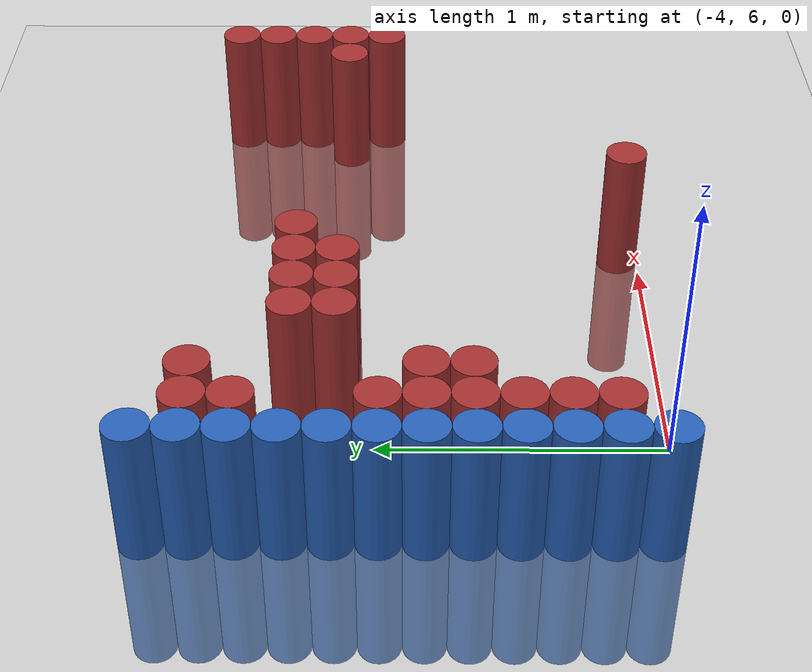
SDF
<sdf version="1.6">
 <world name="default">
  <model name="ground_plane">
   <static>1</static>
   <link name="link">
    <collision name="collision">
     <geometry><plane><normal>0 0 1</normal><size>100 100</size></plane></geometry>
     <surface><friction><ode><mu>100</mu><mu2>50</mu2></ode></friction></surface>
    </collision>
    <visual name="visual">
     <cast_shadows>0</cast_shadows>
     <geometry><plane><normal>0 0 1</normal><size>100 100</size></plane></geometry>
     <material>
      <script><uri>file://media/materials/scripts/gazebo.material</uri><name>Gazebo/Grey</name></script>
     </material>
    </visual>
   </link>
  </model>
  <model name="unit_cylinder_102">
   <static>1</static>
   <pose>-4.425000 6.075000 0.000000 0.000000 0.000000 0.000000</pose>
   <link name="link">
    <inertial>
     <mass>1</mass>
     <inertia><ixx>0.145833</ixx><ixy>0</ixy><ixz>0</ixz><iyy>0.145833</iyy><iyz>0</iyz><izz>0.125</izz></inertia>
    </inertial>
    <collision name="collision">
     <geometry><cylinder><radius>0.075000</radius><length>1</length></cylinder></geometry>
    </collision>
    <visual name="visual">
     <geometry><cylinder><radius>0.075000</radius><length>1</length></cylinder></geometry>
     <material>
      <ambient>0.152000 0.379000 0.720000 1</ambient>
      <diffuse>0.152000 0.379000 0.720000 1</diffuse>
     </material>
     <material>
      <script><name>Gazebo/Grey</name><uri>file://media/materials/scripts/gazebo.material</uri></script>
     </material>
    </visual>
    <sensor name="sensor_contact" type="contact"><contact><collision>collision</collision></contact></sensor>
   </link>
   <plugin filename="gz-sim-touchplugin-system" name="gz::sim::systems::TouchPlugin">
    <target>robot</target>
    <namespace>robot</namespace>
    <time>0.001</time>
    <enabled>true</enabled>
   </plugin>
  </model>
  <model name="unit_cylinder_103">
   <static>1</static>
   <pose>-4.425000 6.225000 0.000000 0.000000 0.000000 0.000000</pose>
   <link name="link">
    <inertial>
     <mass>1</mass>
     <inertia><ixx>0.145833</ixx><ixy>0</ixy><ixz>0</ixz><iyy>0.145833</iyy><iyz>0</iyz><izz>0.125</izz></inertia>
    </inertial>
    <collision name="collision">
     <geometry><cylinder><radius>0.075000</radius><length>1</length></cylinder></geometry>
    </collision>
    <visual name="visual">
     <geometry><cylinder><radius>0.075000</radius><length>1</length></cylinder></geometry>
     <material>
      <ambient>0.152000 0.379000 0.720000 1</ambient>
      <diffuse>0.152000 0.379000 0.720000 1</diffuse>
     </material>
     <material>
      <script><name>Gazebo/Grey</name><uri>file://media/materials/scripts/gazebo.material</uri></script>
     </material>
    </visual>
    <sensor name="sensor_contact" type="contact"><contact><collision>collision</collision></contact></sensor>
   </link>
   <plugin filename="gz-sim-touchplugin-system" name="gz::sim::systems::TouchPlugin">
    <target>robot</target>
    <namespace>robot</namespace>
    <time>0.001</time>
    <enabled>true</enabled>
   </plugin>
  </model>
  <model name="unit_cylinder_104">
   <static>1</static>
   <pose>-4.425000 6.375000 0.000000 0.000000 0.000000 0.000000</pose>
   <link name="link">
    <inertial>
     <mass>1</mass>
     <inertia><ixx>0.145833</ixx><ixy>0</ixy><ixz>0</ixz><iyy>0.145833</iyy><iyz>0</iyz><izz>0.125</izz></inertia>
    </inertial>
    <collision name="collision">
     <geometry><cylinder><radius>0.075000</radius><length>1</length></cylinder></geometry>
    </collision>
    <visual name="visual">
     <geometry><cylinder><radius>0.075000</radius><length>1</length></cylinder></geometry>
     <material>
      <ambient>0.152000 0.379000 0.720000 1</ambient>
      <diffuse>0.152000 0.379000 0.720000 1</diffuse>
     </material>
     <material>
      <script><name>Gazebo/Grey</name><uri>file://media/materials/scripts/gazebo.material</uri></script>
     </material>
    </visual>
    <sensor name="sensor_contact" type="contact"><contact><collision>collision</collision></contact></sensor>
   </link>
   <plugin filename="gz-sim-touchplugin-system" name="gz::sim::systems::TouchPlugin">
    <target>robot</target>
    <namespace>robot</namespace>
    <time>0.001</time>
    <enabled>true</enabled>
   </plugin>
  </model>
  <model name="unit_cylinder_105">
   <static>1</static>
   <pose>-4.425000 6.525000 0.000000 0.000000 0.000000 0.000000</pose>
   <link name="link">
    <inertial>
     <mass>1</mass>
     <inertia><ixx>0.145833</ixx><ixy>0</ixy><ixz>0</ixz><iyy>0.145833</iyy><iyz>0</iyz><izz>0.125</izz></inertia>
    </inertial>
    <collision name="collision">
     <geometry><cylinder><radius>0.075000</radius><length>1</length></cylinder></geometry>
    </collision>
    <visual name="visual">
     <geometry><cylinder><radius>0.075000</radius><length>1</length></cylinder></geometry>
     <material>
      <ambient>0.152000 0.379000 0.720000 1</ambient>
      <diffuse>0.152000 0.379000 0.720000 1</diffuse>
     </material>
     <material>
      <script><name>Gazebo/Grey</name><uri>file://media/materials/scripts/gazebo.material</uri></script>
     </material>
    </visual>
    <sensor name="sensor_contact" type="contact"><contact><collision>collision</collision></contact></sensor>
   </link>
   <plugin filename="gz-sim-touchplugin-system" name="gz::sim::systems::TouchPlugin">
    <target>robot</target>
    <namespace>robot</namespace>
    <time>0.001</time>
    <enabled>true</enabled>
   </plugin>
  </model>
  <model name="unit_cylinder_106">
   <static>1</static>
   <pose>-4.425000 6.675000 0.000000 0.000000 0.000000 0.000000</pose>
   <link name="link">
    <inertial>
     <mass>1</mass>
     <inertia><ixx>0.145833</ixx><ixy>0</ixy><ixz>0</ixz><iyy>0.145833</iyy><iyz>0</iyz><izz>0.125</izz></inertia>
    </inertial>
    <collision name="collision">
     <geometry><cylinder><radius>0.075000</radius><length>1</length></cylinder></geometry>
    </collision>
    <visual name="visual">
     <geometry><cylinder><radius>0.075000</radius><length>1</length></cylinder></geometry>
     <material>
      <ambient>0.152000 0.379000 0.720000 1</ambient>
      <diffuse>0.152000 0.379000 0.720000 1</diffuse>
     </material>
     <material>
      <script><name>Gazebo/Grey</name><uri>file://media/materials/scripts/gazebo.material</uri></script>
     </material>
    </visual>
    <sensor name="sensor_contact" type="contact"><contact><collision>collision</collision></contact></sensor>
   </link>
   <plugin filename="gz-sim-touchplugin-system" name="gz::sim::systems::TouchPlugin">
    <target>robot</target>
    <namespace>robot</namespace>
    <time>0.001</time>
    <enabled>true</enabled>
   </plugin>
  </model>
  <model name="unit_cylinder_107">
   <static>1</static>
   <pose>-4.425000 6.825000 0.000000 0.000000 0.000000 0.000000</pose>
   <link name="link">
    <inertial>
     <mass>1</mass>
     <inertia><ixx>0.145833</ixx><ixy>0</ixy><ixz>0</ixz><iyy>0.145833</iyy><iyz>0</iyz><izz>0.125</izz></inertia>
    </inertial>
    <collision name="collision">
     <geometry><cylinder><radius>0.075000</radius><length>1</length></cylinder></geometry>
    </collision>
    <visual name="visual">
     <geometry><cylinder><radius>0.075000</radius><length>1</length></cylinder></geometry>
     <material>
      <ambient>0.152000 0.379000 0.720000 1</ambient>
      <diffuse>0.152000 0.379000 0.720000 1</diffuse>
     </material>
     <material>
      <script><name>Gazebo/Grey</name><uri>file://media/materials/scripts/gazebo.material</uri></script>
     </material>
    </visual>
    <sensor name="sensor_contact" type="contact"><contact><collision>collision</collision></contact></sensor>
   </link>
   <plugin filename="gz-sim-touchplugin-system" name="gz::sim::systems::TouchPlugin">
    <target>robot</target>
    <namespace>robot</namespace>
    <time>0.001</time>
    <enabled>true</enabled>
   </plugin>
  </model>
  <model name="unit_cylinder_108">
   <static>1</static>
   <pose>-4.425000 6.975000 0.000000 0.000000 0.000000 0.000000</pose>
   <link name="link">
    <inertial>
     <mass>1</mass>
     <inertia><ixx>0.145833</ixx><ixy>0</ixy><ixz>0</ixz><iyy>0.145833</iyy><iyz>0</iyz><izz>0.125</izz></inertia>
    </inertial>
    <collision name="collision">
     <geometry><cylinder><radius>0.075000</radius><length>1</length></cylinder></geometry>
    </collision>
    <visual name="visual">
     <geometry><cylinder><radius>0.075000</radius><length>1</length></cylinder></geometry>
     <material>
      <ambient>0.152000 0.379000 0.720000 1</ambient>
      <diffuse>0.152000 0.379000 0.720000 1</diffuse>
     </material>
     <material>
      <script><name>Gazebo/Grey</name><uri>file://media/materials/scripts/gazebo.material</uri></script>
     </material>
    </visual>
    <sensor name="sensor_contact" type="contact"><contact><collision>collision</collision></contact></sensor>
   </link>
   <plugin filename="gz-sim-touchplugin-system" name="gz::sim::systems::TouchPlugin">
    <target>robot</target>
    <namespace>robot</namespace>
    <time>0.001</time>
    <enabled>true</enabled>
   </plugin>
  </model>
  <model name="unit_cylinder_109">
   <static>1</static>
   <pose>-4.425000 7.125000 0.000000 0.000000 0.000000 0.000000</pose>
   <link name="link">
    <inertial>
     <mass>1</mass>
     <inertia><ixx>0.145833</ixx><ixy>0</ixy><ixz>0</ixz><iyy>0.145833</iyy><iyz>0</iyz><izz>0.125</izz></inertia>
    </inertial>
    <collision name="collision">
     <geometry><cylinder><radius>0.075000</radius><length>1</length></cylinder></geometry>
    </collision>
    <visual name="visual">
     <geometry><cylinder><radius>0.075000</radius><length>1</length></cylinder></geometry>
     <material>
      <ambient>0.152000 0.379000 0.720000 1</ambient>
      <diffuse>0.152000 0.379000 0.720000 1</diffuse>
     </material>
     <material>
      <script><name>Gazebo/Grey</name><uri>file://media/materials/scripts/gazebo.material</uri></script>
     </material>
    </visual>
    <sensor name="sensor_contact" type="contact"><contact><collision>collision</collision></contact></sensor>
   </link>
   <plugin filename="gz-sim-touchplugin-system" name="gz::sim::systems::TouchPlugin">
    <target>robot</target>
    <namespace>robot</namespace>
    <time>0.001</time>
    <enabled>true</enabled>
   </plugin>
  </model>
  <model name="unit_cylinder_110">
   <static>1</static>
   <pose>-4.425000 7.275000 0.000000 0.000000 0.000000 0.000000</pose>
   <link name="link">
    <inertial>
     <mass>1</mass>
     <inertia><ixx>0.145833</ixx><ixy>0</ixy><ixz>0</ixz><iyy>0.145833</iyy><iyz>0</iyz><izz>0.125</izz></inertia>
    </inertial>
    <collision name="collision">
     <geometry><cylinder><radius>0.075000</radius><length>1</length></cylinder></geometry>
    </collision>
    <visual name="visual">
     <geometry><cylinder><radius>0.075000</radius><length>1</length></cylinder></geometry>
     <material>
      <ambient>0.152000 0.379000 0.720000 1</ambient>
      <diffuse>0.152000 0.379000 0.720000 1</diffuse>
     </material>
     <material>
      <script><name>Gazebo/Grey</name><uri>file://media/materials/scripts/gazebo.material</uri></script>
     </material>
    </visual>
    <sensor name="sensor_contact" type="contact"><contact><collision>collision</collision></contact></sensor>
   </link>
   <plugin filename="gz-sim-touchplugin-system" name="gz::sim::systems::TouchPlugin">
    <target>robot</target>
    <namespace>robot</namespace>
    <time>0.001</time>
    <enabled>true</enabled>
   </plugin>
  </model>
  <model name="unit_cylinder_111">
   <static>1</static>
   <pose>-4.425000 7.425000 0.000000 0.000000 0.000000 0.000000</pose>
   <link name="link">
    <inertial>
     <mass>1</mass>
     <inertia><ixx>0.145833</ixx><ixy>0</ixy><ixz>0</ixz><iyy>0.145833</iyy><iyz>0</iyz><izz>0.125</izz></inertia>
    </inertial>
    <collision name="collision">
     <geometry><cylinder><radius>0.075000</radius><length>1</length></cylinder></geometry>
    </collision>
    <visual name="visual">
     <geometry><cylinder><radius>0.075000</radius><length>1</length></cylinder></geometry>
     <material>
      <ambient>0.152000 0.379000 0.720000 1</ambient>
      <diffuse>0.152000 0.379000 0.720000 1</diffuse>
     </material>
     <material>
      <script><name>Gazebo/Grey</name><uri>file://media/materials/scripts/gazebo.material</uri></script>
     </material>
    </visual>
    <sensor name="sensor_contact" type="contact"><contact><collision>collision</collision></contact></sensor>
   </link>
   <plugin filename="gz-sim-touchplugin-system" name="gz::sim::systems::TouchPlugin">
    <target>robot</target>
    <namespace>robot</namespace>
    <time>0.001</time>
    <enabled>true</enabled>
   </plugin>
  </model>
  <model name="unit_cylinder_112">
   <static>1</static>
   <pose>-4.425000 7.575000 0.000000 0.000000 0.000000 0.000000</pose>
   <link name="link">
    <inertial>
     <mass>1</mass>
     <inertia><ixx>0.145833</ixx><ixy>0</ixy><ixz>0</ixz><iyy>0.145833</iyy><iyz>0</iyz><izz>0.125</izz></inertia>
    </inertial>
    <collision name="collision">
     <geometry><cylinder><radius>0.075000</radius><length>1</length></cylinder></geometry>
    </collision>
    <visual name="visual">
     <geometry><cylinder><radius>0.075000</radius><length>1</length></cylinder></geometry>
     <material>
      <ambient>0.152000 0.379000 0.720000 1</ambient>
      <diffuse>0.152000 0.379000 0.720000 1</diffuse>
     </material>
     <material>
      <script><name>Gazebo/Grey</name><uri>file://media/materials/scripts/gazebo.material</uri></script>
     </material>
    </visual>
    <sensor name="sensor_contact" type="contact"><contact><collision>collision</collision></contact></sensor>
   </link>
   <plugin filename="gz-sim-touchplugin-system" name="gz::sim::systems::TouchPlugin">
    <target>robot</target>
    <namespace>robot</namespace>
    <time>0.001</time>
    <enabled>true</enabled>
   </plugin>
  </model>
  <model name="unit_cylinder_113">
   <static>1</static>
   <pose>-4.425000 7.725000 0.000000 0.000000 0.000000 0.000000</pose>
   <link name="link">
    <inertial>
     <mass>1</mass>
     <inertia><ixx>0.145833</ixx><ixy>0</ixy><ixz>0</ixz><iyy>0.145833</iyy><iyz>0</iyz><izz>0.125</izz></inertia>
    </inertial>
    <collision name="collision">
     <geometry><cylinder><radius>0.075000</radius><length>1</length></cylinder></geometry>
    </collision>
    <visual name="visual">
     <geometry><cylinder><radius>0.075000</radius><length>1</length></cylinder></geometry>
     <material>
      <ambient>0.152000 0.379000 0.720000 1</ambient>
      <diffuse>0.152000 0.379000 0.720000 1</diffuse>
     </material>
     <material>
      <script><name>Gazebo/Grey</name><uri>file://media/materials/scripts/gazebo.material</uri></script>
     </material>
    </visual>
    <sensor name="sensor_contact" type="contact"><contact><collision>collision</collision></contact></sensor>
   </link>
   <plugin filename="gz-sim-touchplugin-system" name="gz::sim::systems::TouchPlugin">
    <target>robot</target>
    <namespace>robot</namespace>
    <time>0.001</time>
    <enabled>true</enabled>
   </plugin>
  </model>
  <model name="unit_cylinder_130">
   <static>1</static>
   <pose>-4.275000 6.225000 0.000000 0.000000 0.000000 0.000000</pose>
   <link name="link">
    <inertial>
     <mass>1</mass>
     <inertia><ixx>0.145833</ixx><ixy>0</ixy><ixz>0</ixz><iyy>0.145833</iyy><iyz>0</iyz><izz>0.125</izz></inertia>
    </inertial>
    <collision name="collision">
     <geometry><cylinder><radius>0.075000</radius><length>1</length></cylinder></geometry>
    </collision>
    <visual name="visual">
     <geometry><cylinder><radius>0.075000</radius><length>1</length></cylinder></geometry>
     <material>
      <ambient>0.648000 0.192000 0.192000 1</ambient>
      <diffuse>0.648000 0.192000 0.192000 1</diffuse>
     </material>
     <material>
      <script><name>Gazebo/Grey</name><uri>file://media/materials/scripts/gazebo.material</uri></script>
     </material>
    </visual>
    <sensor name="sensor_contact" type="contact"><contact><collision>collision</collision></contact></sensor>
   </link>
   <plugin filename="gz-sim-touchplugin-system" name="gz::sim::systems::TouchPlugin">
    <target>robot</target>
    <namespace>robot</namespace>
    <time>0.001</time>
    <enabled>true</enabled>
   </plugin>
  </model>
  <model name="unit_cylinder_131">
   <static>1</static>
   <pose>-4.275000 6.375000 0.000000 0.000000 0.000000 0.000000</pose>
   <link name="link">
    <inertial>
     <mass>1</mass>
     <inertia><ixx>0.145833</ixx><ixy>0</ixy><ixz>0</ixz><iyy>0.145833</iyy><iyz>0</iyz><izz>0.125</izz></inertia>
    </inertial>
    <collision name="collision">
     <geometry><cylinder><radius>0.075000</radius><length>1</length></cylinder></geometry>
    </collision>
    <visual name="visual">
     <geometry><cylinder><radius>0.075000</radius><length>1</length></cylinder></geometry>
     <material>
      <ambient>0.648000 0.192000 0.192000 1</ambient>
      <diffuse>0.648000 0.192000 0.192000 1</diffuse>
     </material>
     <material>
      <script><name>Gazebo/Grey</name><uri>file://media/materials/scripts/gazebo.material</uri></script>
     </material>
    </visual>
    <sensor name="sensor_contact" type="contact"><contact><collision>collision</collision></contact></sensor>
   </link>
   <plugin filename="gz-sim-touchplugin-system" name="gz::sim::systems::TouchPlugin">
    <target>robot</target>
    <namespace>robot</namespace>
    <time>0.001</time>
    <enabled>true</enabled>
   </plugin>
  </model>
  <model name="unit_cylinder_132">
   <static>1</static>
   <pose>-4.275000 6.525000 0.000000 0.000000 0.000000 0.000000</pose>
   <link name="link">
    <inertial>
     <mass>1</mass>
     <inertia><ixx>0.145833</ixx><ixy>0</ixy><ixz>0</ixz><iyy>0.145833</iyy><iyz>0</iyz><izz>0.125</izz></inertia>
    </inertial>
    <collision name="collision">
     <geometry><cylinder><radius>0.075000</radius><length>1</length></cylinder></geometry>
    </collision>
    <visual name="visual">
     <geometry><cylinder><radius>0.075000</radius><length>1</length></cylinder></geometry>
     <material>
      <ambient>0.648000 0.192000 0.192000 1</ambient>
      <diffuse>0.648000 0.192000 0.192000 1</diffuse>
     </material>
     <material>
      <script><name>Gazebo/Grey</name><uri>file://media/materials/scripts/gazebo.material</uri></script>
     </material>
    </visual>
    <sensor name="sensor_contact" type="contact"><contact><collision>collision</collision></contact></sensor>
   </link>
   <plugin filename="gz-sim-touchplugin-system" name="gz::sim::systems::TouchPlugin">
    <target>robot</target>
    <namespace>robot</namespace>
    <time>0.001</time>
    <enabled>true</enabled>
   </plugin>
  </model>
  <model name="unit_cylinder_133">
   <static>1</static>
   <pose>-4.275000 6.675000 0.000000 0.000000 0.000000 0.000000</pose>
   <link name="link">
    <inertial>
     <mass>1</mass>
     <inertia><ixx>0.145833</ixx><ixy>0</ixy><ixz>0</ixz><iyy>0.145833</iyy><iyz>0</iyz><izz>0.125</izz></inertia>
    </inertial>
    <collision name="collision">
     <geometry><cylinder><radius>0.075000</radius><length>1</length></cylinder></geometry>
    </collision>
    <visual name="visual">
     <geometry><cylinder><radius>0.075000</radius><length>1</length></cylinder></geometry>
     <material>
      <ambient>0.648000 0.192000 0.192000 1</ambient>
      <diffuse>0.648000 0.192000 0.192000 1</diffuse>
     </material>
     <material>
      <script><name>Gazebo/Grey</name><uri>file://media/materials/scripts/gazebo.material</uri></script>
     </material>
    </visual>
    <sensor name="sensor_contact" type="contact"><contact><collision>collision</collision></contact></sensor>
   </link>
   <plugin filename="gz-sim-touchplugin-system" name="gz::sim::systems::TouchPlugin">
    <target>robot</target>
    <namespace>robot</namespace>
    <time>0.001</time>
    <enabled>true</enabled>
   </plugin>
  </model>
  <model name="unit_cylinder_134">
   <static>1</static>
   <pose>-4.275000 6.825000 0.000000 0.000000 0.000000 0.000000</pose>
   <link name="link">
    <inertial>
     <mass>1</mass>
     <inertia><ixx>0.145833</ixx><ixy>0</ixy><ixz>0</ixz><iyy>0.145833</iyy><iyz>0</iyz><izz>0.125</izz></inertia>
    </inertial>
    <collision name="collision">
     <geometry><cylinder><radius>0.075000</radius><length>1</length></cylinder></geometry>
    </collision>
    <visual name="visual">
     <geometry><cylinder><radius>0.075000</radius><length>1</length></cylinder></geometry>
     <material>
      <ambient>0.648000 0.192000 0.192000 1</ambient>
      <diffuse>0.648000 0.192000 0.192000 1</diffuse>
     </material>
     <material>
      <script><name>Gazebo/Grey</name><uri>file://media/materials/scripts/gazebo.material</uri></script>
     </material>
    </visual>
    <sensor name="sensor_contact" type="contact"><contact><collision>collision</collision></contact></sensor>
   </link>
   <plugin filename="gz-sim-touchplugin-system" name="gz::sim::systems::TouchPlugin">
    <target>robot</target>
    <namespace>robot</namespace>
    <time>0.001</time>
    <enabled>true</enabled>
   </plugin>
  </model>
  <model name="unit_cylinder_135">
   <static>1</static>
   <pose>-4.275000 6.975000 0.000000 0.000000 0.000000 0.000000</pose>
   <link name="link">
    <inertial>
     <mass>1</mass>
     <inertia><ixx>0.145833</ixx><ixy>0</ixy><ixz>0</ixz><iyy>0.145833</iyy><iyz>0</iyz><izz>0.125</izz></inertia>
    </inertial>
    <collision name="collision">
     <geometry><cylinder><radius>0.075000</radius><length>1</length></cylinder></geometry>
    </collision>
    <visual name="visual">
     <geometry><cylinder><radius>0.075000</radius><length>1</length></cylinder></geometry>
     <material>
      <ambient>0.648000 0.192000 0.192000 1</ambient>
      <diffuse>0.648000 0.192000 0.192000 1</diffuse>
     </material>
     <material>
      <script><name>Gazebo/Grey</name><uri>file://media/materials/scripts/gazebo.material</uri></script>
     </material>
    </visual>
    <sensor name="sensor_contact" type="contact"><contact><collision>collision</collision></contact></sensor>
   </link>
   <plugin filename="gz-sim-touchplugin-system" name="gz::sim::systems::TouchPlugin">
    <target>robot</target>
    <namespace>robot</namespace>
    <time>0.001</time>
    <enabled>true</enabled>
   </plugin>
  </model>
  <model name="unit_cylinder_136">
   <static>1</static>
   <pose>-4.275000 7.425000 0.000000 0.000000 0.000000 0.000000</pose>
   <link name="link">
    <inertial>
     <mass>1</mass>
     <inertia><ixx>0.145833</ixx><ixy>0</ixy><ixz>0</ixz><iyy>0.145833</iyy><iyz>0</iyz><izz>0.125</izz></inertia>
    </inertial>
    <collision name="collision">
     <geometry><cylinder><radius>0.075000</radius><length>1</length></cylinder></geometry>
    </collision>
    <visual name="visual">
     <geometry><cylinder><radius>0.075000</radius><length>1</length></cylinder></geometry>
     <material>
      <ambient>0.648000 0.192000 0.192000 1</ambient>
      <diffuse>0.648000 0.192000 0.192000 1</diffuse>
     </material>
     <material>
      <script><name>Gazebo/Grey</name><uri>file://media/materials/scripts/gazebo.material</uri></script>
     </material>
    </visual>
    <sensor name="sensor_contact" type="contact"><contact><collision>collision</collision></contact></sensor>
   </link>
   <plugin filename="gz-sim-touchplugin-system" name="gz::sim::systems::TouchPlugin">
    <target>robot</target>
    <namespace>robot</namespace>
    <time>0.001</time>
    <enabled>true</enabled>
   </plugin>
  </model>
  <model name="unit_cylinder_137">
   <static>1</static>
   <pose>-4.275000 7.575000 0.000000 0.000000 0.000000 0.000000</pose>
   <link name="link">
    <inertial>
     <mass>1</mass>
     <inertia><ixx>0.145833</ixx><ixy>0</ixy><ixz>0</ixz><iyy>0.145833</iyy><iyz>0</iyz><izz>0.125</izz></inertia>
    </inertial>
    <collision name="collision">
     <geometry><cylinder><radius>0.075000</radius><length>1</length></cylinder></geometry>
    </collision>
    <visual name="visual">
     <geometry><cylinder><radius>0.075000</radius><length>1</length></cylinder></geometry>
     <material>
      <ambient>0.648000 0.192000 0.192000 1</ambient>
      <diffuse>0.648000 0.192000 0.192000 1</diffuse>
     </material>
     <material>
      <script><name>Gazebo/Grey</name><uri>file://media/materials/scripts/gazebo.material</uri></script>
     </material>
    </visual>
    <sensor name="sensor_contact" type="contact"><contact><collision>collision</collision></contact></sensor>
   </link>
   <plugin filename="gz-sim-touchplugin-system" name="gz::sim::systems::TouchPlugin">
    <target>robot</target>
    <namespace>robot</namespace>
    <time>0.001</time>
    <enabled>true</enabled>
   </plugin>
  </model>
  <model name="unit_cylinder_142">
   <static>1</static>
   <pose>-4.125000 6.675000 0.000000 0.000000 0.000000 0.000000</pose>
   <link name="link">
    <inertial>
     <mass>1</mass>
     <inertia><ixx>0.145833</ixx><ixy>0</ixy><ixz>0</ixz><iyy>0.145833</iyy><iyz>0</iyz><izz>0.125</izz></inertia>
    </inertial>
    <collision name="collision">
     <geometry><cylinder><radius>0.075000</radius><length>1</length></cylinder></geometry>
    </collision>
    <visual name="visual">
     <geometry><cylinder><radius>0.075000</radius><length>1</length></cylinder></geometry>
     <material>
      <ambient>0.648000 0.192000 0.192000 1</ambient>
      <diffuse>0.648000 0.192000 0.192000 1</diffuse>
     </material>
     <material>
      <script><name>Gazebo/Grey</name><uri>file://media/materials/scripts/gazebo.material</uri></script>
     </material>
    </visual>
    <sensor name="sensor_contact" type="contact"><contact><collision>collision</collision></contact></sensor>
   </link>
   <plugin filename="gz-sim-touchplugin-system" name="gz::sim::systems::TouchPlugin">
    <target>robot</target>
    <namespace>robot</namespace>
    <time>0.001</time>
    <enabled>true</enabled>
   </plugin>
  </model>
  <model name="unit_cylinder_143">
   <static>1</static>
   <pose>-4.125000 6.825000 0.000000 0.000000 0.000000 0.000000</pose>
   <link name="link">
    <inertial>
     <mass>1</mass>
     <inertia><ixx>0.145833</ixx><ixy>0</ixy><ixz>0</ixz><iyy>0.145833</iyy><iyz>0</iyz><izz>0.125</izz></inertia>
    </inertial>
    <collision name="collision">
     <geometry><cylinder><radius>0.075000</radius><length>1</length></cylinder></geometry>
    </collision>
    <visual name="visual">
     <geometry><cylinder><radius>0.075000</radius><length>1</length></cylinder></geometry>
     <material>
      <ambient>0.648000 0.192000 0.192000 1</ambient>
      <diffuse>0.648000 0.192000 0.192000 1</diffuse>
     </material>
     <material>
      <script><name>Gazebo/Grey</name><uri>file://media/materials/scripts/gazebo.material</uri></script>
     </material>
    </visual>
    <sensor name="sensor_contact" type="contact"><contact><collision>collision</collision></contact></sensor>
   </link>
   <plugin filename="gz-sim-touchplugin-system" name="gz::sim::systems::TouchPlugin">
    <target>robot</target>
    <namespace>robot</namespace>
    <time>0.001</time>
    <enabled>true</enabled>
   </plugin>
  </model>
  <model name="unit_cylinder_144">
   <static>1</static>
   <pose>-4.125000 7.575000 0.000000 0.000000 0.000000 0.000000</pose>
   <link name="link">
    <inertial>
     <mass>1</mass>
     <inertia><ixx>0.145833</ixx><ixy>0</ixy><ixz>0</ixz><iyy>0.145833</iyy><iyz>0</iyz><izz>0.125</izz></inertia>
    </inertial>
    <collision name="collision">
     <geometry><cylinder><radius>0.075000</radius><length>1</length></cylinder></geometry>
    </collision>
    <visual name="visual">
     <geometry><cylinder><radius>0.075000</radius><length>1</length></cylinder></geometry>
     <material>
      <ambient>0.648000 0.192000 0.192000 1</ambient>
      <diffuse>0.648000 0.192000 0.192000 1</diffuse>
     </material>
     <material>
      <script><name>Gazebo/Grey</name><uri>file://media/materials/scripts/gazebo.material</uri></script>
     </material>
    </visual>
    <sensor name="sensor_contact" type="contact"><contact><collision>collision</collision></contact></sensor>
   </link>
   <plugin filename="gz-sim-touchplugin-system" name="gz::sim::systems::TouchPlugin">
    <target>robot</target>
    <namespace>robot</namespace>
    <time>0.001</time>
    <enabled>true</enabled>
   </plugin>
  </model>
  <model name="unit_cylinder_152">
   <static>1</static>
   <pose>-3.825000 7.125000 0.000000 0.000000 0.000000 0.000000</pose>
   <link name="link">
    <inertial>
     <mass>1</mass>
     <inertia><ixx>0.145833</ixx><ixy>0</ixy><ixz>0</ixz><iyy>0.145833</iyy><iyz>0</iyz><izz>0.125</izz></inertia>
    </inertial>
    <collision name="collision">
     <geometry><cylinder><radius>0.075000</radius><length>1</length></cylinder></geometry>
    </collision>
    <visual name="visual">
     <geometry><cylinder><radius>0.075000</radius><length>1</length></cylinder></geometry>
     <material>
      <ambient>0.648000 0.192000 0.192000 1</ambient>
      <diffuse>0.648000 0.192000 0.192000 1</diffuse>
     </material>
     <material>
      <script><name>Gazebo/Grey</name><uri>file://media/materials/scripts/gazebo.material</uri></script>
     </material>
    </visual>
    <sensor name="sensor_contact" type="contact"><contact><collision>collision</collision></contact></sensor>
   </link>
   <plugin filename="gz-sim-touchplugin-system" name="gz::sim::systems::TouchPlugin">
    <target>robot</target>
    <namespace>robot</namespace>
    <time>0.001</time>
    <enabled>true</enabled>
   </plugin>
  </model>
  <model name="unit_cylinder_153">
   <static>1</static>
   <pose>-3.825000 7.275000 0.000000 0.000000 0.000000 0.000000</pose>
   <link name="link">
    <inertial>
     <mass>1</mass>
     <inertia><ixx>0.145833</ixx><ixy>0</ixy><ixz>0</ixz><iyy>0.145833</iyy><iyz>0</iyz><izz>0.125</izz></inertia>
    </inertial>
    <collision name="collision">
     <geometry><cylinder><radius>0.075000</radius><length>1</length></cylinder></geometry>
    </collision>
    <visual name="visual">
     <geometry><cylinder><radius>0.075000</radius><length>1</length></cylinder></geometry>
     <material>
      <ambient>0.648000 0.192000 0.192000 1</ambient>
      <diffuse>0.648000 0.192000 0.192000 1</diffuse>
     </material>
     <material>
      <script><name>Gazebo/Grey</name><uri>file://media/materials/scripts/gazebo.material</uri></script>
     </material>
    </visual>
    <sensor name="sensor_contact" type="contact"><contact><collision>collision</collision></contact></sensor>
   </link>
   <plugin filename="gz-sim-touchplugin-system" name="gz::sim::systems::TouchPlugin">
    <target>robot</target>
    <namespace>robot</namespace>
    <time>0.001</time>
    <enabled>true</enabled>
   </plugin>
  </model>
  <model name="unit_cylinder_157">
   <static>1</static>
   <pose>-3.675000 7.125000 0.000000 0.000000 0.000000 0.000000</pose>
   <link name="link">
    <inertial>
     <mass>1</mass>
     <inertia><ixx>0.145833</ixx><ixy>0</ixy><ixz>0</ixz><iyy>0.145833</iyy><iyz>0</iyz><izz>0.125</izz></inertia>
    </inertial>
    <collision name="collision">
     <geometry><cylinder><radius>0.075000</radius><length>1</length></cylinder></geometry>
    </collision>
    <visual name="visual">
     <geometry><cylinder><radius>0.075000</radius><length>1</length></cylinder></geometry>
     <material>
      <ambient>0.648000 0.192000 0.192000 1</ambient>
      <diffuse>0.648000 0.192000 0.192000 1</diffuse>
     </material>
     <material>
      <script><name>Gazebo/Grey</name><uri>file://media/materials/scripts/gazebo.material</uri></script>
     </material>
    </visual>
    <sensor name="sensor_contact" type="contact"><contact><collision>collision</collision></contact></sensor>
   </link>
   <plugin filename="gz-sim-touchplugin-system" name="gz::sim::systems::TouchPlugin">
    <target>robot</target>
    <namespace>robot</namespace>
    <time>0.001</time>
    <enabled>true</enabled>
   </plugin>
  </model>
  <model name="unit_cylinder_158">
   <static>1</static>
   <pose>-3.675000 7.275000 0.000000 0.000000 0.000000 0.000000</pose>
   <link name="link">
    <inertial>
     <mass>1</mass>
     <inertia><ixx>0.145833</ixx><ixy>0</ixy><ixz>0</ixz><iyy>0.145833</iyy><iyz>0</iyz><izz>0.125</izz></inertia>
    </inertial>
    <collision name="collision">
     <geometry><cylinder><radius>0.075000</radius><length>1</length></cylinder></geometry>
    </collision>
    <visual name="visual">
     <geometry><cylinder><radius>0.075000</radius><length>1</length></cylinder></geometry>
     <material>
      <ambient>0.648000 0.192000 0.192000 1</ambient>
      <diffuse>0.648000 0.192000 0.192000 1</diffuse>
     </material>
     <material>
      <script><name>Gazebo/Grey</name><uri>file://media/materials/scripts/gazebo.material</uri></script>
     </material>
    </visual>
    <sensor name="sensor_contact" type="contact"><contact><collision>collision</collision></contact></sensor>
   </link>
   <plugin filename="gz-sim-touchplugin-system" name="gz::sim::systems::TouchPlugin">
    <target>robot</target>
    <namespace>robot</namespace>
    <time>0.001</time>
    <enabled>true</enabled>
   </plugin>
  </model>
  <model name="unit_cylinder_161">
   <static>1</static>
   <pose>-3.525000 7.125000 0.000000 0.000000 0.000000 0.000000</pose>
   <link name="link">
    <inertial>
     <mass>1</mass>
     <inertia><ixx>0.145833</ixx><ixy>0</ixy><ixz>0</ixz><iyy>0.145833</iyy><iyz>0</iyz><izz>0.125</izz></inertia>
    </inertial>
    <collision name="collision">
     <geometry><cylinder><radius>0.075000</radius><length>1</length></cylinder></geometry>
    </collision>
    <visual name="visual">
     <geometry><cylinder><radius>0.075000</radius><length>1</length></cylinder></geometry>
     <material>
      <ambient>0.648000 0.192000 0.192000 1</ambient>
      <diffuse>0.648000 0.192000 0.192000 1</diffuse>
     </material>
     <material>
      <script><name>Gazebo/Grey</name><uri>file://media/materials/scripts/gazebo.material</uri></script>
     </material>
    </visual>
    <sensor name="sensor_contact" type="contact"><contact><collision>collision</collision></contact></sensor>
   </link>
   <plugin filename="gz-sim-touchplugin-system" name="gz::sim::systems::TouchPlugin">
    <target>robot</target>
    <namespace>robot</namespace>
    <time>0.001</time>
    <enabled>true</enabled>
   </plugin>
  </model>
  <model name="unit_cylinder_162">
   <static>1</static>
   <pose>-3.525000 7.275000 0.000000 0.000000 0.000000 0.000000</pose>
   <link name="link">
    <inertial>
     <mass>1</mass>
     <inertia><ixx>0.145833</ixx><ixy>0</ixy><ixz>0</ixz><iyy>0.145833</iyy><iyz>0</iyz><izz>0.125</izz></inertia>
    </inertial>
    <collision name="collision">
     <geometry><cylinder><radius>0.075000</radius><length>1</length></cylinder></geometry>
    </collision>
    <visual name="visual">
     <geometry><cylinder><radius>0.075000</radius><length>1</length></cylinder></geometry>
     <material>
      <ambient>0.648000 0.192000 0.192000 1</ambient>
      <diffuse>0.648000 0.192000 0.192000 1</diffuse>
     </material>
     <material>
      <script><name>Gazebo/Grey</name><uri>file://media/materials/scripts/gazebo.material</uri></script>
     </material>
    </visual>
    <sensor name="sensor_contact" type="contact"><contact><collision>collision</collision></contact></sensor>
   </link>
   <plugin filename="gz-sim-touchplugin-system" name="gz::sim::systems::TouchPlugin">
    <target>robot</target>
    <namespace>robot</namespace>
    <time>0.001</time>
    <enabled>true</enabled>
   </plugin>
  </model>
  <model name="unit_cylinder_164">
   <static>1</static>
   <pose>-3.375000 7.275000 0.000000 0.000000 0.000000 0.000000</pose>
   <link name="link">
    <inertial>
     <mass>1</mass>
     <inertia><ixx>0.145833</ixx><ixy>0</ixy><ixz>0</ixz><iyy>0.145833</iyy><iyz>0</iyz><izz>0.125</izz></inertia>
    </inertial>
    <collision name="collision">
     <geometry><cylinder><radius>0.075000</radius><length>1</length></cylinder></geometry>
    </collision>
    <visual name="visual">
     <geometry><cylinder><radius>0.075000</radius><length>1</length></cylinder></geometry>
     <material>
      <ambient>0.648000 0.192000 0.192000 1</ambient>
      <diffuse>0.648000 0.192000 0.192000 1</diffuse>
     </material>
     <material>
      <script><name>Gazebo/Grey</name><uri>file://media/materials/scripts/gazebo.material</uri></script>
     </material>
    </visual>
    <sensor name="sensor_contact" type="contact"><contact><collision>collision</collision></contact></sensor>
   </link>
   <plugin filename="gz-sim-touchplugin-system" name="gz::sim::systems::TouchPlugin">
    <target>robot</target>
    <namespace>robot</namespace>
    <time>0.001</time>
    <enabled>true</enabled>
   </plugin>
  </model>
  <model name="unit_cylinder_178">
   <static>1</static>
   <pose>-2.925000 6.075000 0.000000 0.000000 0.000000 0.000000</pose>
   <link name="link">
    <inertial>
     <mass>1</mass>
     <inertia><ixx>0.145833</ixx><ixy>0</ixy><ixz>0</ixz><iyy>0.145833</iyy><iyz>0</iyz><izz>0.125</izz></inertia>
    </inertial>
    <collision name="collision">
     <geometry><cylinder><radius>0.075000</radius><length>1</length></cylinder></geometry>
    </collision>
    <visual name="visual">
     <geometry><cylinder><radius>0.075000</radius><length>1</length></cylinder></geometry>
     <material>
      <ambient>0.648000 0.192000 0.192000 1</ambient>
      <diffuse>0.648000 0.192000 0.192000 1</diffuse>
     </material>
     <material>
      <script><name>Gazebo/Grey</name><uri>file://media/materials/scripts/gazebo.material</uri></script>
     </material>
    </visual>
    <sensor name="sensor_contact" type="contact"><contact><collision>collision</collision></contact></sensor>
   </link>
   <plugin filename="gz-sim-touchplugin-system" name="gz::sim::systems::TouchPlugin">
    <target>robot</target>
    <namespace>robot</namespace>
    <time>0.001</time>
    <enabled>true</enabled>
   </plugin>
  </model>
  <model name="unit_cylinder_190">
   <static>1</static>
   <pose>-2.175000 7.125000 0.000000 0.000000 0.000000 0.000000</pose>
   <link name="link">
    <inertial>
     <mass>1</mass>
     <inertia><ixx>0.145833</ixx><ixy>0</ixy><ixz>0</ixz><iyy>0.145833</iyy><iyz>0</iyz><izz>0.125</izz></inertia>
    </inertial>
    <collision name="collision">
     <geometry><cylinder><radius>0.075000</radius><length>1</length></cylinder></geometry>
    </collision>
    <visual name="visual">
     <geometry><cylinder><radius>0.075000</radius><length>1</length></cylinder></geometry>
     <material>
      <ambient>0.648000 0.192000 0.192000 1</ambient>
      <diffuse>0.648000 0.192000 0.192000 1</diffuse>
     </material>
     <material>
      <script><name>Gazebo/Grey</name><uri>file://media/materials/scripts/gazebo.material</uri></script>
     </material>
    </visual>
    <sensor name="sensor_contact" type="contact"><contact><collision>collision</collision></contact></sensor>
   </link>
   <plugin filename="gz-sim-touchplugin-system" name="gz::sim::systems::TouchPlugin">
    <target>robot</target>
    <namespace>robot</namespace>
    <time>0.001</time>
    <enabled>true</enabled>
   </plugin>
  </model>
  <model name="unit_cylinder_192">
   <static>1</static>
   <pose>-2.025000 6.975000 0.000000 0.000000 0.000000 0.000000</pose>
   <link name="link">
    <inertial>
     <mass>1</mass>
     <inertia><ixx>0.145833</ixx><ixy>0</ixy><ixz>0</ixz><iyy>0.145833</iyy><iyz>0</iyz><izz>0.125</izz></inertia>
    </inertial>
    <collision name="collision">
     <geometry><cylinder><radius>0.075000</radius><length>1</length></cylinder></geometry>
    </collision>
    <visual name="visual">
     <geometry><cylinder><radius>0.075000</radius><length>1</length></cylinder></geometry>
     <material>
      <ambient>0.648000 0.192000 0.192000 1</ambient>
      <diffuse>0.648000 0.192000 0.192000 1</diffuse>
     </material>
     <material>
      <script><name>Gazebo/Grey</name><uri>file://media/materials/scripts/gazebo.material</uri></script>
     </material>
    </visual>
    <sensor name="sensor_contact" type="contact"><contact><collision>collision</collision></contact></sensor>
   </link>
   <plugin filename="gz-sim-touchplugin-system" name="gz::sim::systems::TouchPlugin">
    <target>robot</target>
    <namespace>robot</namespace>
    <time>0.001</time>
    <enabled>true</enabled>
   </plugin>
  </model>
  <model name="unit_cylinder_193">
   <static>1</static>
   <pose>-2.025000 7.125000 0.000000 0.000000 0.000000 0.000000</pose>
   <link name="link">
    <inertial>
     <mass>1</mass>
     <inertia><ixx>0.145833</ixx><ixy>0</ixy><ixz>0</ixz><iyy>0.145833</iyy><iyz>0</iyz><izz>0.125</izz></inertia>
    </inertial>
    <collision name="collision">
     <geometry><cylinder><radius>0.075000</radius><length>1</length></cylinder></geometry>
    </collision>
    <visual name="visual">
     <geometry><cylinder><radius>0.075000</radius><length>1</length></cylinder></geometry>
     <material>
      <ambient>0.648000 0.192000 0.192000 1</ambient>
      <diffuse>0.648000 0.192000 0.192000 1</diffuse>
     </material>
     <material>
      <script><name>Gazebo/Grey</name><uri>file://media/materials/scripts/gazebo.material</uri></script>
     </material>
    </visual>
    <sensor name="sensor_contact" type="contact"><contact><collision>collision</collision></contact></sensor>
   </link>
   <plugin filename="gz-sim-touchplugin-system" name="gz::sim::systems::TouchPlugin">
    <target>robot</target>
    <namespace>robot</namespace>
    <time>0.001</time>
    <enabled>true</enabled>
   </plugin>
  </model>
  <model name="unit_cylinder_194">
   <static>1</static>
   <pose>-2.025000 7.275000 0.000000 0.000000 0.000000 0.000000</pose>
   <link name="link">
    <inertial>
     <mass>1</mass>
     <inertia><ixx>0.145833</ixx><ixy>0</ixy><ixz>0</ixz><iyy>0.145833</iyy><iyz>0</iyz><izz>0.125</izz></inertia>
    </inertial>
    <collision name="collision">
     <geometry><cylinder><radius>0.075000</radius><length>1</length></cylinder></geometry>
    </collision>
    <visual name="visual">
     <geometry><cylinder><radius>0.075000</radius><length>1</length></cylinder></geometry>
     <material>
      <ambient>0.648000 0.192000 0.192000 1</ambient>
      <diffuse>0.648000 0.192000 0.192000 1</diffuse>
     </material>
     <material>
      <script><name>Gazebo/Grey</name><uri>file://media/materials/scripts/gazebo.material</uri></script>
     </material>
    </visual>
    <sensor name="sensor_contact" type="contact"><contact><collision>collision</collision></contact></sensor>
   </link>
   <plugin filename="gz-sim-touchplugin-system" name="gz::sim::systems::TouchPlugin">
    <target>robot</target>
    <namespace>robot</namespace>
    <time>0.001</time>
    <enabled>true</enabled>
   </plugin>
  </model>
  <model name="unit_cylinder_195">
   <static>1</static>
   <pose>-2.025000 7.425000 0.000000 0.000000 0.000000 0.000000</pose>
   <link name="link">
    <inertial>
     <mass>1</mass>
     <inertia><ixx>0.145833</ixx><ixy>0</ixy><ixz>0</ixz><iyy>0.145833</iyy><iyz>0</iyz><izz>0.125</izz></inertia>
    </inertial>
    <collision name="collision">
     <geometry><cylinder><radius>0.075000</radius><length>1</length></cylinder></geometry>
    </collision>
    <visual name="visual">
     <geometry><cylinder><radius>0.075000</radius><length>1</length></cylinder></geometry>
     <material>
      <ambient>0.648000 0.192000 0.192000 1</ambient>
      <diffuse>0.648000 0.192000 0.192000 1</diffuse>
     </material>
     <material>
      <script><name>Gazebo/Grey</name><uri>file://media/materials/scripts/gazebo.material</uri></script>
     </material>
    </visual>
    <sensor name="sensor_contact" type="contact"><contact><collision>collision</collision></contact></sensor>
   </link>
   <plugin filename="gz-sim-touchplugin-system" name="gz::sim::systems::TouchPlugin">
    <target>robot</target>
    <namespace>robot</namespace>
    <time>0.001</time>
    <enabled>true</enabled>
   </plugin>
  </model>
  <model name="unit_cylinder_196">
   <static>1</static>
   <pose>-2.025000 7.575000 0.000000 0.000000 0.000000 0.000000</pose>
   <link name="link">
    <inertial>
     <mass>1</mass>
     <inertia><ixx>0.145833</ixx><ixy>0</ixy><ixz>0</ixz><iyy>0.145833</iyy><iyz>0</iyz><izz>0.125</izz></inertia>
    </inertial>
    <collision name="collision">
     <geometry><cylinder><radius>0.075000</radius><length>1</length></cylinder></geometry>
    </collision>
    <visual name="visual">
     <geometry><cylinder><radius>0.075000</radius><length>1</length></cylinder></geometry>
     <material>
      <ambient>0.648000 0.192000 0.192000 1</ambient>
      <diffuse>0.648000 0.192000 0.192000 1</diffuse>
     </material>
     <material>
      <script><name>Gazebo/Grey</name><uri>file://media/materials/scripts/gazebo.material</uri></script>
     </material>
    </visual>
    <sensor name="sensor_contact" type="contact"><contact><collision>collision</collision></contact></sensor>
   </link>
   <plugin filename="gz-sim-touchplugin-system" name="gz::sim::systems::TouchPlugin">
    <target>robot</target>
    <namespace>robot</namespace>
    <time>0.001</time>
    <enabled>true</enabled>
   </plugin>
  </model>
 </world>
</sdf>
